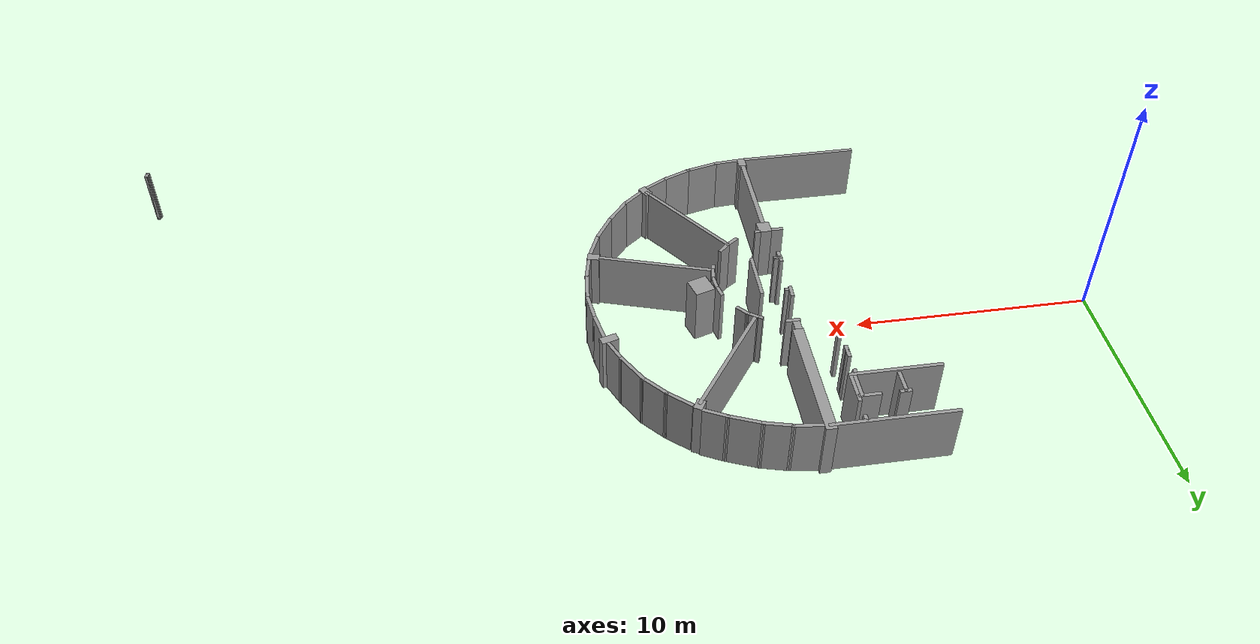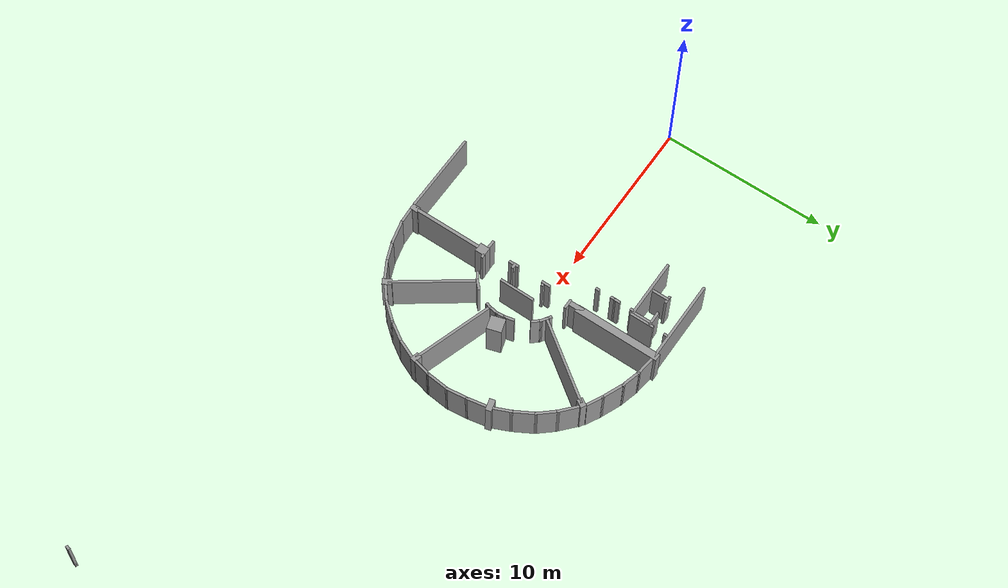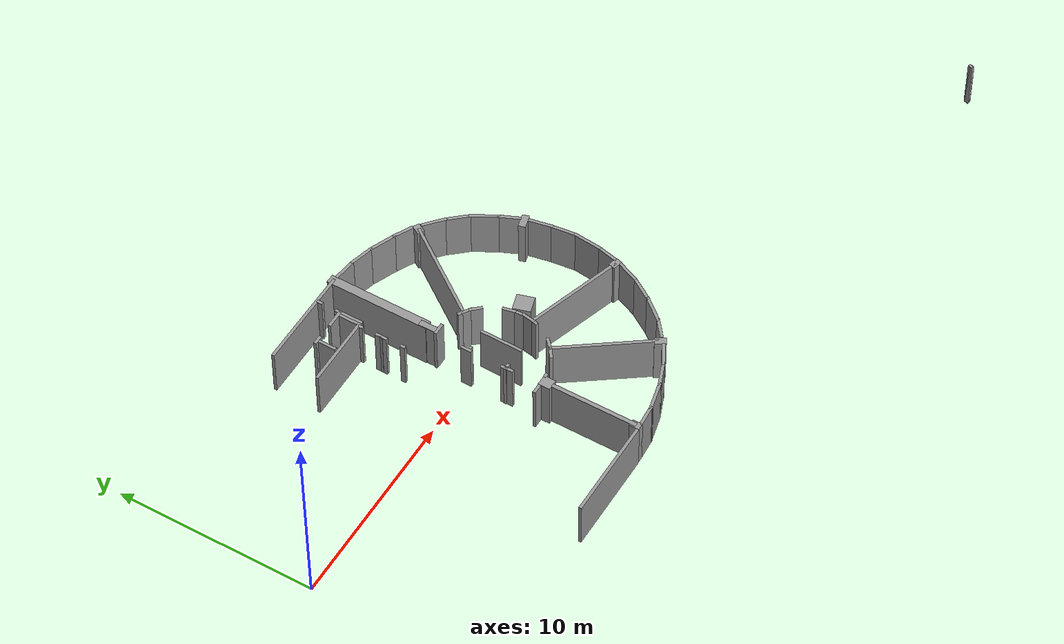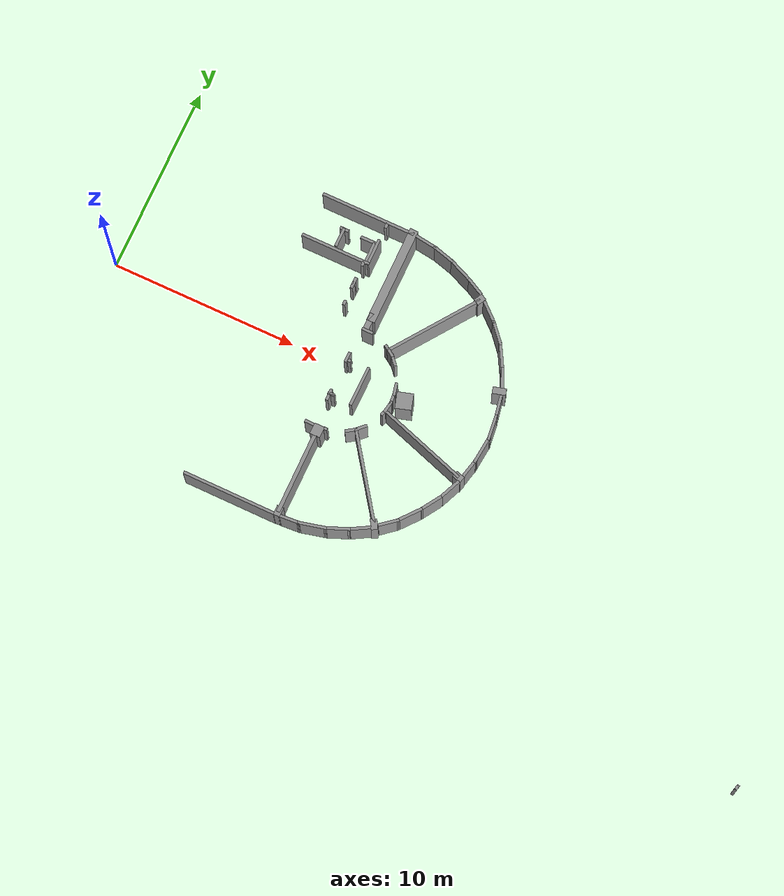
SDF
<sdf version="1.7">
 <model name="New_6_OG_normale_tueren">
  <pose>10.3487 -1.93317 0 0 -0 0</pose>
  <link name="Wall_233">
   <collision name="Wall_233_Collision">
    <geometry><box><size>0.154533 0.15 2.5</size></box></geometry>
    <pose>0 0 1.25 0 -0 0</pose>
   </collision>
   <visual name="Wall_233_Visual">
    <pose>0 0 1.25 0 -0 0</pose>
    <geometry><box><size>0.154533 0.15 2.5</size></box></geometry>
    <material>
     <script><uri>file://media/materials/scripts/gazebo.material</uri><name>Gazebo/Grey</name></script>
     <ambient>1 1 1 1</ambient>
    </material>
    <meta><layer>0</layer></meta>
   </visual>
   <pose>1.38852 5.64703 0 0 -0 -0.061211</pose>
  </link>
  <link name="Wall_235">
   <collision name="Wall_235_Collision">
    <geometry><box><size>0.25 0.15 2.5</size></box></geometry>
    <pose>0 0 1.25 0 -0 0</pose>
   </collision>
   <visual name="Wall_235_Visual">
    <pose>0 0 1.25 0 -0 0</pose>
    <geometry><box><size>0.25 0.15 2.5</size></box></geometry>
    <material>
     <script><uri>file://media/materials/scripts/gazebo.material</uri><name>Gazebo/Grey</name></script>
     <ambient>1 1 1 1</ambient>
    </material>
    <meta><layer>0</layer></meta>
   </visual>
   <pose>1.40579 4.53815 0 0 -0 1.5708</pose>
  </link>
  <link name="Wall_237">
   <collision name="Wall_237_Collision">
    <geometry><box><size>0.605182 0.15 2.5</size></box></geometry>
    <pose>0 0 1.25 0 -0 0</pose>
   </collision>
   <visual name="Wall_237_Visual">
    <pose>0 0 1.25 0 -0 0</pose>
    <geometry><box><size>0.605182 0.15 2.5</size></box></geometry>
    <material>
     <script><uri>file://media/materials/scripts/gazebo.material</uri><name>Gazebo/Grey</name></script>
     <ambient>1 1 1 1</ambient>
    </material>
    <meta><layer>0</layer></meta>
   </visual>
   <pose>1.3893 5.66694 0 0 -0 1.56591</pose>
  </link>
  <link name="Wall_239">
   <collision name="Wall_239_Collision">
    <geometry><box><size>0.25 0.15 2.5</size></box></geometry>
    <pose>0 0 1.25 0 -0 0</pose>
   </collision>
   <visual name="Wall_239_Visual">
    <pose>0 0 1.25 0 -0 0</pose>
    <geometry><box><size>0.25 0.15 2.5</size></box></geometry>
    <material>
     <script><uri>file://media/materials/scripts/gazebo.material</uri><name>Gazebo/Grey</name></script>
     <ambient>1 1 1 1</ambient>
    </material>
    <meta><layer>0</layer></meta>
   </visual>
   <pose>1.39249 6.76095 0 0 -0 1.5708</pose>
  </link>
  <link name="Wall_260">
   <collision name="Wall_260_Collision">
    <geometry><box><size>3.7528 0.15 2.5</size></box></geometry>
    <pose>0 0 1.25 0 -0 0</pose>
   </collision>
   <visual name="Wall_260_Visual">
    <pose>0 0 1.25 0 -0 0</pose>
    <geometry><box><size>3.7528 0.15 2.5</size></box></geometry>
    <material>
     <script><uri>file://media/materials/scripts/gazebo.material</uri><name>Gazebo/Grey</name></script>
     <ambient>1 1 1 1</ambient>
    </material>
    <meta><layer>0</layer></meta>
   </visual>
   <pose>-0.190224 6.87811 0 0 -0 0.003472</pose>
  </link>
  <link name="Wall_261">
   <collision name="Wall_261_Collision">
    <geometry><box><size>1.44469 0.15 2.5</size></box></geometry>
    <pose>0 0 1.25 0 -0 0</pose>
   </collision>
   <visual name="Wall_261_Visual">
    <pose>0 0 1.25 0 -0 0</pose>
    <geometry><box><size>1.44469 0.15 2.5</size></box></geometry>
    <material>
     <script><uri>file://media/materials/scripts/gazebo.material</uri><name>Gazebo/Grey</name></script>
     <ambient>1 1 1 1</ambient>
    </material>
    <meta><layer>0</layer></meta>
   </visual>
   <pose>1.61333 7.53171 0 0 -0 1.57333</pose>
  </link>
  <link name="Wall_266">
   <collision name="Wall_266_Collision">
    <geometry><box><size>1.01494 0.15 2.5</size></box></geometry>
    <pose>0 0 1.25 0 -0 0</pose>
   </collision>
   <visual name="Wall_266_Visual">
    <pose>0 0 1.25 0 -0 0</pose>
    <geometry><box><size>1.01494 0.15 2.5</size></box></geometry>
    <material>
     <script><uri>file://media/materials/scripts/gazebo.material</uri><name>Gazebo/Grey</name></script>
     <ambient>1 1 1 1</ambient>
    </material>
    <meta><layer>0</layer></meta>
   </visual>
   <pose>-0.251791 7.5356 0 0 -0 -1.5708</pose>
  </link>
  <link name="Wall_269">
   <collision name="Wall_269_Collision">
    <geometry><box><size>0.477286 0.15 2.5</size></box></geometry>
    <pose>0 0 1.25 0 -0 0</pose>
   </collision>
   <visual name="Wall_269_Visual">
    <pose>0 0 1.25 0 -0 0</pose>
    <geometry><box><size>0.477286 0.15 2.5</size></box></geometry>
    <material>
     <script><uri>file://media/materials/scripts/gazebo.material</uri><name>Gazebo/Grey</name></script>
     <ambient>1 1 1 1</ambient>
    </material>
    <meta><layer>0</layer></meta>
   </visual>
   <pose>-0.228705 8.00241 0 0 -0 0.010641</pose>
  </link>
  <link name="Wall_273">
   <collision name="Wall_273_Collision">
    <geometry><box><size>0.905542 0.15 2.5</size></box></geometry>
    <pose>0 0 1.25 0 -0 0</pose>
   </collision>
   <visual name="Wall_273_Visual">
    <pose>0 0 1.25 0 -0 0</pose>
    <geometry><box><size>0.905542 0.15 2.5</size></box></geometry>
    <material>
     <script><uri>file://media/materials/scripts/gazebo.material</uri><name>Gazebo/Grey</name></script>
     <ambient>1 1 1 1</ambient>
    </material>
    <meta><layer>0</layer></meta>
   </visual>
   <pose>1.16057 7.9967 0 0 -0 0.010488</pose>
  </link>
  <link name="Wall_275">
   <collision name="Wall_275_Collision">
    <geometry><box><size>1.07522 0.15 2.5</size></box></geometry>
    <pose>0 0 1.25 0 -0 0</pose>
   </collision>
   <visual name="Wall_275_Visual">
    <pose>0 0 1.25 0 -0 0</pose>
    <geometry><box><size>1.07522 0.15 2.5</size></box></geometry>
    <material>
     <script><uri>file://media/materials/scripts/gazebo.material</uri><name>Gazebo/Grey</name></script>
     <ambient>1 1 1 1</ambient>
    </material>
    <meta><layer>0</layer></meta>
   </visual>
   <pose>1.46792 7.49538 0 0 -0 1.5708</pose>
  </link>
  <link name="Wall_277">
   <collision name="Wall_277_Collision">
    <geometry><box><size>5.08838 0.15 2.5</size></box></geometry>
    <pose>0 0 1.25 0 -0 0</pose>
   </collision>
   <visual name="Wall_277_Visual">
    <pose>0 0 1.25 0 -0 0</pose>
    <geometry><box><size>5.08838 0.15 2.5</size></box></geometry>
    <material>
     <script><uri>file://media/materials/scripts/gazebo.material</uri><name>Gazebo/Grey</name></script>
     <ambient>1 1 1 1</ambient>
    </material>
    <meta><layer>0</layer></meta>
   </visual>
   <pose>0.544986 9.24095 0 0 -0 0</pose>
  </link>
  <link name="Wall_279">
   <collision name="Wall_279_Collision">
    <geometry><box><size>0.310909 0.15 2.5</size></box></geometry>
    <pose>0 0 1.25 0 -0 0</pose>
   </collision>
   <visual name="Wall_279_Visual">
    <pose>0 0 1.25 0 -0 0</pose>
    <geometry><box><size>0.310909 0.15 2.5</size></box></geometry>
    <material>
     <script><uri>file://media/materials/scripts/gazebo.material</uri><name>Gazebo/Grey</name></script>
     <ambient>1 1 1 1</ambient>
    </material>
    <meta><layer>0</layer></meta>
   </visual>
   <pose>1.63503 9.0911 0 0 -0 -1.5708</pose>
  </link>
  <link name="Wall_281">
   <collision name="Wall_281_Collision">
    <geometry><box><size>5.24655 0.45 2.5</size></box></geometry>
    <pose>0 0 1.25 0 -0 0</pose>
   </collision>
   <visual name="Wall_281_Visual">
    <pose>0 0 1.25 0 -0 0</pose>
    <geometry><box><size>5.24655 0.45 2.5</size></box></geometry>
    <material>
     <script><uri>file://media/materials/scripts/gazebo.material</uri><name>Gazebo/Grey</name></script>
     <ambient>1 1 1 1</ambient>
    </material>
    <meta><layer>0</layer></meta>
   </visual>
   <pose>3.00901 6.83112 0 0 -0 -1.57295</pose>
  </link>
  <link name="Wall_285">
   <collision name="Wall_285_Collision">
    <geometry><box><size>0.85 0.3 2.5</size></box></geometry>
    <pose>0 0 1.25 0 -0 0</pose>
   </collision>
   <visual name="Wall_285_Visual">
    <pose>0 0 1.25 0 -0 0</pose>
    <geometry><box><size>0.85 0.3 2.5</size></box></geometry>
    <material>
     <script><uri>file://media/materials/scripts/gazebo.material</uri><name>Gazebo/Grey</name></script>
     <ambient>1 1 1 1</ambient>
    </material>
    <meta><layer>0</layer></meta>
   </visual>
   <pose>2.96025 4.18947 0 0 -0 -1.5708</pose>
  </link>
  <link name="Wall_29">
   <collision name="Wall_29_Collision">
    <geometry><box><size>5 0.15 2.5</size></box></geometry>
    <pose>0 0 1.25 0 -0 0</pose>
   </collision>
   <visual name="Wall_29_Visual">
    <pose>0 0 1.25 0 -0 0</pose>
    <geometry><box><size>5 0.15 2.5</size></box></geometry>
    <material>
     <script><uri>file://media/materials/scripts/gazebo.material</uri><name>Gazebo/Grey</name></script>
     <ambient>1 1 1 1</ambient>
    </material>
    <meta><layer>0</layer></meta>
   </visual>
   <pose>0.289373 -6.75961 0 0 -0 0</pose>
  </link>
  <link name="Wall_31">
   <collision name="Wall_31_Collision">
    <geometry><box><size>1.12025 0.15 2.5</size></box></geometry>
    <pose>0 0 1.25 0 -0 0</pose>
   </collision>
   <visual name="Wall_31_Visual">
    <pose>0 0 1.25 0 -0 0</pose>
    <geometry><box><size>1.12025 0.15 2.5</size></box></geometry>
    <material>
     <script><uri>file://media/materials/scripts/gazebo.material</uri><name>Gazebo/Grey</name></script>
     <ambient>1 1 1 1</ambient>
    </material>
    <meta><layer>0</layer></meta>
   </visual>
   <pose>3.61863 -6.7029 0 0 -0 0.070197</pose>
  </link>
  <link name="Wall_311">
   <collision name="Wall_311_Collision">
    <geometry><box><size>2.13937 0.15 2.5</size></box></geometry>
    <pose>0 0 1.25 0 -0 0</pose>
   </collision>
   <visual name="Wall_311_Visual">
    <pose>0 0 1.25 0 -0 0</pose>
    <geometry><box><size>2.13937 0.15 2.5</size></box></geometry>
    <material>
     <script><uri>file://media/materials/scripts/gazebo.material</uri><name>Gazebo/Grey</name></script>
     <ambient>1 1 1 1</ambient>
    </material>
    <meta><layer>0</layer></meta>
   </visual>
   <pose>3.92635 0.932707 0 0 -0 -1.58242</pose>
  </link>
  <link name="Wall_313">
   <collision name="Wall_313_Collision">
    <geometry><box><size>0.612757 0.15 2.5</size></box></geometry>
    <pose>0 0 1.25 0 -0 0</pose>
   </collision>
   <visual name="Wall_313_Visual">
    <pose>0 0 1.25 0 -0 0</pose>
    <geometry><box><size>0.612757 0.15 2.5</size></box></geometry>
    <material>
     <script><uri>file://media/materials/scripts/gazebo.material</uri><name>Gazebo/Grey</name></script>
     <ambient>1 1 1 1</ambient>
    </material>
    <meta><layer>0</layer></meta>
   </visual>
   <pose>2.71437 -0.103416 0 0 -0 -1.5458</pose>
  </link>
  <link name="Wall_32">
   <collision name="Wall_32_Collision">
    <geometry><box><size>1.51083 0.15 2.5</size></box></geometry>
    <pose>0 0 1.25 0 -0 0</pose>
   </collision>
   <visual name="Wall_32_Visual">
    <pose>0 0 1.25 0 -0 0</pose>
    <geometry><box><size>1.51083 0.15 2.5</size></box></geometry>
    <material>
     <script><uri>file://media/materials/scripts/gazebo.material</uri><name>Gazebo/Grey</name></script>
     <ambient>1 1 1 1</ambient>
    </material>
    <meta><layer>0</layer></meta>
   </visual>
   <pose>4.76418 -6.51008 0 0 -0 0.235545</pose>
  </link>
  <link name="Wall_33">
   <collision name="Wall_33_Collision">
    <geometry><box><size>1.32385 0.15 2.5</size></box></geometry>
    <pose>0 0 1.25 0 -0 0</pose>
   </collision>
   <visual name="Wall_33_Visual">
    <pose>0 0 1.25 0 -0 0</pose>
    <geometry><box><size>1.32385 0.15 2.5</size></box></geometry>
    <material>
     <script><uri>file://media/materials/scripts/gazebo.material</uri><name>Gazebo/Grey</name></script>
     <ambient>1 1 1 1</ambient>
    </material>
    <meta><layer>0</layer></meta>
   </visual>
   <pose>5.97023 -6.13201 0 0 -0 0.382899</pose>
  </link>
  <link name="Wall_34">
   <collision name="Wall_34_Collision">
    <geometry><box><size>1.20032 0.15 2.5</size></box></geometry>
    <pose>0 0 1.25 0 -0 0</pose>
   </collision>
   <visual name="Wall_34_Visual">
    <pose>0 0 1.25 0 -0 0</pose>
    <geometry><box><size>1.20032 0.15 2.5</size></box></geometry>
    <material>
     <script><uri>file://media/materials/scripts/gazebo.material</uri><name>Gazebo/Grey</name></script>
     <ambient>1 1 1 1</ambient>
    </material>
    <meta><layer>0</layer></meta>
   </visual>
   <pose>6.97977 -5.65498 0 0 -0 0.513014</pose>
  </link>
  <link name="Wall_353">
   <collision name="Wall_353_Collision">
    <geometry><box><size>0.25 0.15 2.5</size></box></geometry>
    <pose>0 0 1.25 0 -0 0</pose>
   </collision>
   <visual name="Wall_353_Visual">
    <pose>0 0 1.25 0 -0 0</pose>
    <geometry><box><size>0.25 0.15 2.5</size></box></geometry>
    <material>
     <script><uri>file://media/materials/scripts/gazebo.material</uri><name>Gazebo/Grey</name></script>
     <ambient>1 1 1 1</ambient>
    </material>
    <meta><layer>0</layer></meta>
   </visual>
   <pose>29.3637 -9.57449 0 0 -0 -1.8326</pose>
  </link>
  <link name="Wall_354">
   <collision name="Wall_354_Collision">
    <geometry><box><size>0.25 0.15 2.5</size></box></geometry>
    <pose>0 0 1.25 0 -0 0</pose>
   </collision>
   <visual name="Wall_354_Visual">
    <pose>0 0 1.25 0 -0 0</pose>
    <geometry><box><size>0.25 0.15 2.5</size></box></geometry>
    <material>
     <script><uri>file://media/materials/scripts/gazebo.material</uri><name>Gazebo/Grey</name></script>
     <ambient>1 1 1 1</ambient>
    </material>
    <meta><layer>0</layer></meta>
   </visual>
   <pose>29.3637 -9.57449 0 0 -0 1.309</pose>
  </link>
  <link name="Wall_357">
   <collision name="Wall_357_Collision">
    <geometry><box><size>0.6 0.55 2.5</size></box></geometry>
    <pose>0 0 1.25 0 -0 0</pose>
   </collision>
   <visual name="Wall_357_Visual">
    <pose>0 0 1.25 0 -0 0</pose>
    <geometry><box><size>0.6 0.55 2.5</size></box></geometry>
    <material>
     <script><uri>file://media/materials/scripts/gazebo.material</uri><name>Gazebo/Grey</name></script>
     <ambient>1 1 1 1</ambient>
    </material>
    <meta><layer>0</layer></meta>
   </visual>
   <pose>2.95055 -2.01703 0 0 -0 -1.5708</pose>
  </link>
  <link name="Wall_36">
   <collision name="Wall_36_Collision">
    <geometry><box><size>1.09344 0.15 2.5</size></box></geometry>
    <pose>0 0 1.25 0 -0 0</pose>
   </collision>
   <visual name="Wall_36_Visual">
    <pose>0 0 1.25 0 -0 0</pose>
    <geometry><box><size>1.09344 0.15 2.5</size></box></geometry>
    <material>
     <script><uri>file://media/materials/scripts/gazebo.material</uri><name>Gazebo/Grey</name></script>
     <ambient>1 1 1 1</ambient>
    </material>
    <meta><layer>0</layer></meta>
   </visual>
   <pose>8.19016 -4.77617 0 0 -0 0.684617</pose>
  </link>
  <link name="Wall_37">
   <collision name="Wall_37_Collision">
    <geometry><box><size>1.44607 0.15 2.5</size></box></geometry>
    <pose>0 0 1.25 0 -0 0</pose>
   </collision>
   <visual name="Wall_37_Visual">
    <pose>0 0 1.25 0 -0 0</pose>
    <geometry><box><size>1.44607 0.15 2.5</size></box></geometry>
    <material>
     <script><uri>file://media/materials/scripts/gazebo.material</uri><name>Gazebo/Grey</name></script>
     <ambient>1 1 1 1</ambient>
    </material>
    <meta><layer>0</layer></meta>
   </visual>
   <pose>8.96824 -3.9782 0 0 -0 0.880478</pose>
  </link>
  <link name="Wall_377">
   <collision name="Wall_377_Collision">
    <geometry><box><size>0.86044 0.85 2.5</size></box></geometry>
    <pose>0 0 1.25 0 -0 0</pose>
   </collision>
   <visual name="Wall_377_Visual">
    <pose>0 0 1.25 0 -0 0</pose>
    <geometry><box><size>0.86044 0.85 2.5</size></box></geometry>
    <material>
     <script><uri>file://media/materials/scripts/gazebo.material</uri><name>Gazebo/Grey</name></script>
     <ambient>1 1 1 1</ambient>
    </material>
    <meta><layer>0</layer></meta>
   </visual>
   <pose>6.2873 1.18451 0 0 -0 -1.27934</pose>
  </link>
  <link name="Wall_38">
   <collision name="Wall_38_Collision">
    <geometry><box><size>1.29053 0.15 2.5</size></box></geometry>
    <pose>0 0 1.25 0 -0 0</pose>
   </collision>
   <visual name="Wall_38_Visual">
    <pose>0 0 1.25 0 -0 0</pose>
    <geometry><box><size>1.29053 0.15 2.5</size></box></geometry>
    <material>
     <script><uri>file://media/materials/scripts/gazebo.material</uri><name>Gazebo/Grey</name></script>
     <ambient>1 1 1 1</ambient>
    </material>
    <meta><layer>0</layer></meta>
   </visual>
   <pose>9.68915 -2.99876 0 0 -0 0.999721</pose>
  </link>
  <link name="Wall_385">
   <collision name="Wall_385_Collision">
    <geometry><box><size>0.5 0.35 2.5</size></box></geometry>
    <pose>0 0 1.25 0 -0 0</pose>
   </collision>
   <visual name="Wall_385_Visual">
    <pose>0 0 1.25 0 -0 0</pose>
    <geometry><box><size>0.5 0.35 2.5</size></box></geometry>
    <material>
     <script><uri>file://media/materials/scripts/gazebo.material</uri><name>Gazebo/Grey</name></script>
     <ambient>1 1 1 1</ambient>
    </material>
    <meta><layer>0</layer></meta>
   </visual>
   <pose>2.94326 -6.56619 0 0 -0 -1.5708</pose>
  </link>
  <link name="Wall_388">
   <collision name="Wall_388_Collision">
    <geometry><box><size>0.549822 0.35 2.5</size></box></geometry>
    <pose>0 0 1.25 0 -0 0</pose>
   </collision>
   <visual name="Wall_388_Visual">
    <pose>0 0 1.25 0 -0 0</pose>
    <geometry><box><size>0.549822 0.35 2.5</size></box></geometry>
    <material>
     <script><uri>file://media/materials/scripts/gazebo.material</uri><name>Gazebo/Grey</name></script>
     <ambient>1 1 1 1</ambient>
    </material>
    <meta><layer>0</layer></meta>
   </visual>
   <pose>7.56506 -5.16069 0 0 -0 -1.04668</pose>
  </link>
  <link name="Wall_391">
   <collision name="Wall_391_Collision">
    <geometry><box><size>0.5 0.35 2.5</size></box></geometry>
    <pose>0 0 1.25 0 -0 0</pose>
   </collision>
   <visual name="Wall_391_Visual">
    <pose>0 0 1.25 0 -0 0</pose>
    <geometry><box><size>0.5 0.35 2.5</size></box></geometry>
    <material>
     <script><uri>file://media/materials/scripts/gazebo.material</uri><name>Gazebo/Grey</name></script>
     <ambient>1 1 1 1</ambient>
    </material>
    <meta><layer>0</layer></meta>
   </visual>
   <pose>10.3922 -1.19975 0 0 -0 -0.261799</pose>
  </link>
  <link name="Wall_393">
   <collision name="Wall_393_Collision">
    <geometry><box><size>0.69961 0.35 2.5</size></box></geometry>
    <pose>0 0 1.25 0 -0 0</pose>
   </collision>
   <visual name="Wall_393_Visual">
    <pose>0 0 1.25 0 -0 0</pose>
    <geometry><box><size>0.69961 0.35 2.5</size></box></geometry>
    <material>
     <script><uri>file://media/materials/scripts/gazebo.material</uri><name>Gazebo/Grey</name></script>
     <ambient>1 1 1 1</ambient>
    </material>
    <meta><layer>0</layer></meta>
   </visual>
   <pose>10.4153 3.65817 0 0 -0 0.260234</pose>
  </link>
  <link name="Wall_395">
   <collision name="Wall_395_Collision">
    <geometry><box><size>0.5 0.35 2.5</size></box></geometry>
    <pose>0 0 1.25 0 -0 0</pose>
   </collision>
   <visual name="Wall_395_Visual">
    <pose>0 0 1.25 0 -0 0</pose>
    <geometry><box><size>0.5 0.35 2.5</size></box></geometry>
    <material>
     <script><uri>file://media/materials/scripts/gazebo.material</uri><name>Gazebo/Grey</name></script>
     <ambient>1 1 1 1</ambient>
    </material>
    <meta><layer>0</layer></meta>
   </visual>
   <pose>7.55539 7.54986 0 0 -0 1.0472</pose>
  </link>
  <link name="Wall_398">
   <collision name="Wall_398_Collision">
    <geometry><box><size>0.360431 0.15 2.5</size></box></geometry>
    <pose>0 0 1.25 0 -0 0</pose>
   </collision>
   <visual name="Wall_398_Visual">
    <pose>0 0 1.25 0 -0 0</pose>
    <geometry><box><size>0.360431 0.15 2.5</size></box></geometry>
    <material>
     <script><uri>file://media/materials/scripts/gazebo.material</uri><name>Gazebo/Grey</name></script>
     <ambient>1 1 1 1</ambient>
    </material>
    <meta><layer>0</layer></meta>
   </visual>
   <pose>2.80048 -0.029954 0 0 -0 -3.12597</pose>
  </link>
  <link name="Wall_399">
   <collision name="Wall_399_Collision">
    <geometry><box><size>0.360431 0.15 2.5</size></box></geometry>
    <pose>0 0 1.25 0 -0 0</pose>
   </collision>
   <visual name="Wall_399_Visual">
    <pose>0 0 1.25 0 -0 0</pose>
    <geometry><box><size>0.360431 0.15 2.5</size></box></geometry>
    <material>
     <script><uri>file://media/materials/scripts/gazebo.material</uri><name>Gazebo/Grey</name></script>
     <ambient>1 1 1 1</ambient>
    </material>
    <meta><layer>0</layer></meta>
   </visual>
   <pose>2.80376 -0.029954 0 0 -0 0.015624</pose>
  </link>
  <link name="Wall_40">
   <collision name="Wall_40_Collision">
    <geometry><box><size>1.16319 0.15 2.5</size></box></geometry>
    <pose>0 0 1.25 0 -0 0</pose>
   </collision>
   <visual name="Wall_40_Visual">
    <pose>0 0 1.25 0 -0 0</pose>
    <geometry><box><size>1.16319 0.15 2.5</size></box></geometry>
    <material>
     <script><uri>file://media/materials/scripts/gazebo.material</uri><name>Gazebo/Grey</name></script>
     <ambient>1 1 1 1</ambient>
    </material>
    <meta><layer>0</layer></meta>
   </visual>
   <pose>10.2684 -1.92486 0 0 -0 -1.97955</pose>
  </link>
  <link name="Wall_401">
   <collision name="Wall_401_Collision">
    <geometry><box><size>0.15 0.15 2.5</size></box></geometry>
    <pose>0 0 1.25 0 -0 0</pose>
   </collision>
   <visual name="Wall_401_Visual">
    <pose>0 0 1.25 0 -0 0</pose>
    <geometry><box><size>0.15 0.15 2.5</size></box></geometry>
    <material>
     <script><uri>file://media/materials/scripts/gazebo.material</uri><name>Gazebo/Grey</name></script>
     <ambient>1 1 1 1</ambient>
    </material>
    <meta><layer>0</layer></meta>
   </visual>
   <pose>2.89941 1.91747 0 0 -0 0</pose>
  </link>
  <link name="Wall_403">
   <collision name="Wall_403_Collision">
    <geometry><box><size>0.558852 0.15 2.5</size></box></geometry>
    <pose>0 0 1.25 0 -0 0</pose>
   </collision>
   <visual name="Wall_403_Visual">
    <pose>0 0 1.25 0 -0 0</pose>
    <geometry><box><size>0.558852 0.15 2.5</size></box></geometry>
    <material>
     <script><uri>file://media/materials/scripts/gazebo.material</uri><name>Gazebo/Grey</name></script>
     <ambient>1 1 1 1</ambient>
    </material>
    <meta><layer>0</layer></meta>
   </visual>
   <pose>2.74033 2.03986 0 0 -0 1.54924</pose>
  </link>
  <link name="Wall_42">
   <collision name="Wall_42_Collision">
    <geometry><box><size>1.11963 0.15 2.5</size></box></geometry>
    <pose>0 0 1.25 0 -0 0</pose>
   </collision>
   <visual name="Wall_42_Visual">
    <pose>0 0 1.25 0 -0 0</pose>
    <geometry><box><size>1.11963 0.15 2.5</size></box></geometry>
    <material>
     <script><uri>file://media/materials/scripts/gazebo.material</uri><name>Gazebo/Grey</name></script>
     <ambient>1 1 1 1</ambient>
    </material>
    <meta><layer>0</layer></meta>
   </visual>
   <pose>10.6984 -0.589938 0 0 -0 1.34323</pose>
  </link>
  <link name="Wall_43">
   <collision name="Wall_43_Collision">
    <geometry><box><size>1.48869 0.15 2.5</size></box></geometry>
    <pose>0 0 1.25 0 -0 0</pose>
   </collision>
   <visual name="Wall_43_Visual">
    <pose>0 0 1.25 0 -0 0</pose>
    <geometry><box><size>1.48869 0.15 2.5</size></box></geometry>
    <material>
     <script><uri>file://media/materials/scripts/gazebo.material</uri><name>Gazebo/Grey</name></script>
     <ambient>1 1 1 1</ambient>
    </material>
    <meta><layer>0</layer></meta>
   </visual>
   <pose>10.8749 0.548596 0 0 -0 1.47039</pose>
  </link>
  <link name="Wall_44">
   <collision name="Wall_44_Collision">
    <geometry><box><size>1.35283 0.15 2.5</size></box></geometry>
    <pose>0 0 1.25 0 -0 0</pose>
   </collision>
   <visual name="Wall_44_Visual">
    <pose>0 0 1.25 0 -0 0</pose>
    <geometry><box><size>1.35283 0.15 2.5</size></box></geometry>
    <material>
     <script><uri>file://media/materials/scripts/gazebo.material</uri><name>Gazebo/Grey</name></script>
     <ambient>1 1 1 1</ambient>
    </material>
    <meta><layer>0</layer></meta>
   </visual>
   <pose>10.8737 1.81233 0 0 -0 1.68472</pose>
  </link>
  <link name="Wall_45">
   <collision name="Wall_45_Collision">
    <geometry><box><size>1.19924 0.15 2.5</size></box></geometry>
    <pose>0 0 1.25 0 -0 0</pose>
   </collision>
   <visual name="Wall_45_Visual">
    <pose>0 0 1.25 0 -0 0</pose>
    <geometry><box><size>1.19924 0.15 2.5</size></box></geometry>
    <material>
     <script><uri>file://media/materials/scripts/gazebo.material</uri><name>Gazebo/Grey</name></script>
     <ambient>1 1 1 1</ambient>
    </material>
    <meta><layer>0</layer></meta>
   </visual>
   <pose>10.7053 2.92485 0 0 -0 1.76258</pose>
  </link>
  <link name="Wall_47">
   <collision name="Wall_47_Collision">
    <geometry><box><size>1.10002 0.15 2.5</size></box></geometry>
    <pose>0 0 1.25 0 -0 0</pose>
   </collision>
   <visual name="Wall_47_Visual">
    <pose>0 0 1.25 0 -0 0</pose>
    <geometry><box><size>1.10002 0.15 2.5</size></box></geometry>
    <material>
     <script><uri>file://media/materials/scripts/gazebo.material</uri><name>Gazebo/Grey</name></script>
     <ambient>1 1 1 1</ambient>
    </material>
    <meta><layer>0</layer></meta>
   </visual>
   <pose>10.2704 4.3455 0 0 -0 1.9853</pose>
  </link>
  <link name="Wall_48">
   <collision name="Wall_48_Collision">
    <geometry><box><size>1.45831 0.15 2.5</size></box></geometry>
    <pose>0 0 1.25 0 -0 0</pose>
   </collision>
   <visual name="Wall_48_Visual">
    <pose>0 0 1.25 0 -0 0</pose>
    <geometry><box><size>1.45831 0.15 2.5</size></box></geometry>
    <material>
     <script><uri>file://media/materials/scripts/gazebo.material</uri><name>Gazebo/Grey</name></script>
     <ambient>1 1 1 1</ambient>
    </material>
    <meta><layer>0</layer></meta>
   </visual>
   <pose>9.75738 5.34985 0 0 -0 2.085</pose>
  </link>
  <link name="Wall_49">
   <collision name="Wall_49_Collision">
    <geometry><box><size>1.31486 0.15 2.5</size></box></geometry>
    <pose>0 0 1.25 0 -0 0</pose>
   </collision>
   <visual name="Wall_49_Visual">
    <pose>0 0 1.25 0 -0 0</pose>
    <geometry><box><size>1.31486 0.15 2.5</size></box></geometry>
    <material>
     <script><uri>file://media/materials/scripts/gazebo.material</uri><name>Gazebo/Grey</name></script>
     <ambient>1 1 1 1</ambient>
    </material>
    <meta><layer>0</layer></meta>
   </visual>
   <pose>9.05303 6.35854 0 0 -0 2.28752</pose>
  </link>
  <link name="Wall_50">
   <collision name="Wall_50_Collision">
    <geometry><box><size>1.24043 0.15 2.5</size></box></geometry>
    <pose>0 0 1.25 0 -0 0</pose>
   </collision>
   <visual name="Wall_50_Visual">
    <pose>0 0 1.25 0 -0 0</pose>
    <geometry><box><size>1.24043 0.15 2.5</size></box></geometry>
    <material>
     <script><uri>file://media/materials/scripts/gazebo.material</uri><name>Gazebo/Grey</name></script>
     <ambient>1 1 1 1</ambient>
    </material>
    <meta><layer>0</layer></meta>
   </visual>
   <pose>8.26173 7.15854 0 0 -0 2.41826</pose>
  </link>
  <link name="Wall_52">
   <collision name="Wall_52_Collision">
    <geometry><box><size>1.06006 0.15 2.5</size></box></geometry>
    <pose>0 0 1.25 0 -0 0</pose>
   </collision>
   <visual name="Wall_52_Visual">
    <pose>0 0 1.25 0 -0 0</pose>
    <geometry><box><size>1.06006 0.15 2.5</size></box></geometry>
    <material>
     <script><uri>file://media/materials/scripts/gazebo.material</uri><name>Gazebo/Grey</name></script>
     <ambient>1 1 1 1</ambient>
    </material>
    <meta><layer>0</layer></meta>
   </visual>
   <pose>7.03999 8.06724 0 0 -0 2.66513</pose>
  </link>
  <link name="Wall_53">
   <collision name="Wall_53_Collision">
    <geometry><box><size>1.47108 0.15 2.5</size></box></geometry>
    <pose>0 0 1.25 0 -0 0</pose>
   </collision>
   <visual name="Wall_53_Visual">
    <pose>0 0 1.25 0 -0 0</pose>
    <geometry><box><size>1.47108 0.15 2.5</size></box></geometry>
    <material>
     <script><uri>file://media/materials/scripts/gazebo.material</uri><name>Gazebo/Grey</name></script>
     <ambient>1 1 1 1</ambient>
    </material>
    <meta><layer>0</layer></meta>
   </visual>
   <pose>6.02695 8.53246 0 0 -0 2.74275</pose>
  </link>
  <link name="Wall_54">
   <collision name="Wall_54_Collision">
    <geometry><box><size>1.25739 0.15 2.5</size></box></geometry>
    <pose>0 0 1.25 0 -0 0</pose>
   </collision>
   <visual name="Wall_54_Visual">
    <pose>0 0 1.25 0 -0 0</pose>
    <geometry><box><size>1.25739 0.15 2.5</size></box></geometry>
    <material>
     <script><uri>file://media/materials/scripts/gazebo.material</uri><name>Gazebo/Grey</name></script>
     <ambient>1 1 1 1</ambient>
    </material>
    <meta><layer>0</layer></meta>
   </visual>
   <pose>4.88347 8.93246 0 0 -0 2.87947</pose>
  </link>
  <link name="Wall_55">
   <collision name="Wall_55_Collision">
    <geometry><box><size>1.21133 0.15 2.5</size></box></geometry>
    <pose>0 0 1.25 0 -0 0</pose>
   </collision>
   <visual name="Wall_55_Visual">
    <pose>0 0 1.25 0 -0 0</pose>
    <geometry><box><size>1.21133 0.15 2.5</size></box></geometry>
    <material>
     <script><uri>file://media/materials/scripts/gazebo.material</uri><name>Gazebo/Grey</name></script>
     <ambient>1 1 1 1</ambient>
    </material>
    <meta><layer>0</layer></meta>
   </visual>
   <pose>3.8226 9.1455 0 0 -0 3.01012</pose>
  </link>
  <link name="Wall_57">
   <collision name="Wall_57_Collision">
    <geometry><box><size>5.22917 0.15 2.5</size></box></geometry>
    <pose>0 0 1.25 0 -0 0</pose>
   </collision>
   <visual name="Wall_57_Visual">
    <pose>0 0 1.25 0 -0 0</pose>
    <geometry><box><size>5.22917 0.15 2.5</size></box></geometry>
    <material>
     <script><uri>file://media/materials/scripts/gazebo.material</uri><name>Gazebo/Grey</name></script>
     <ambient>1 1 1 1</ambient>
    </material>
    <meta><layer>0</layer></meta>
   </visual>
   <pose>6.03976 5.42705 0 0 -0 -2.1969</pose>
  </link>
  <link name="Wall_59">
   <collision name="Wall_59_Collision">
    <geometry><box><size>4.93599 0.15 2.5</size></box></geometry>
    <pose>0 0 1.25 0 -0 0</pose>
   </collision>
   <visual name="Wall_59_Visual">
    <pose>0 0 1.25 0 -0 0</pose>
    <geometry><box><size>4.93599 0.15 2.5</size></box></geometry>
    <material>
     <script><uri>file://media/materials/scripts/gazebo.material</uri><name>Gazebo/Grey</name></script>
     <ambient>1 1 1 1</ambient>
    </material>
    <meta><layer>0</layer></meta>
   </visual>
   <pose>8.05177 -0.447512 0 0 -0 2.83035</pose>
  </link>
  <link name="Wall_61">
   <collision name="Wall_61_Collision">
    <geometry><box><size>4.85102 0.15 2.5</size></box></geometry>
    <pose>0 0 1.25 0 -0 0</pose>
   </collision>
   <visual name="Wall_61_Visual">
    <pose>0 0 1.25 0 -0 0</pose>
    <geometry><box><size>4.85102 0.15 2.5</size></box></geometry>
    <material>
     <script><uri>file://media/materials/scripts/gazebo.material</uri><name>Gazebo/Grey</name></script>
     <ambient>1 1 1 1</ambient>
    </material>
    <meta><layer>0</layer></meta>
   </visual>
   <pose>6.14185 -3.15646 0 0 -0 -0.946885</pose>
  </link>
  <link name="Wall_63">
   <collision name="Wall_63_Collision">
    <geometry><box><size>4.30142 0.2 2.5</size></box></geometry>
    <pose>0 0 1.25 0 -0 0</pose>
   </collision>
   <visual name="Wall_63_Visual">
    <pose>0 0 1.25 0 -0 0</pose>
    <geometry><box><size>4.30142 0.2 2.5</size></box></geometry>
    <material>
     <script><uri>file://media/materials/scripts/gazebo.material</uri><name>Gazebo/Grey</name></script>
     <ambient>1 1 1 1</ambient>
    </material>
    <meta><layer>0</layer></meta>
   </visual>
   <pose>2.94326 -4.45054 0 0 -0 -1.5708</pose>
  </link>
  <link name="Wall_73">
   <collision name="Wall_73_Collision">
    <geometry><box><size>0.503984 0.15 2.5</size></box></geometry>
    <pose>0 0 1.25 0 -0 0</pose>
   </collision>
   <visual name="Wall_73_Visual">
    <pose>0 0 1.25 0 -0 0</pose>
    <geometry><box><size>0.503984 0.15 2.5</size></box></geometry>
    <material>
     <script><uri>file://media/materials/scripts/gazebo.material</uri><name>Gazebo/Grey</name></script>
     <ambient>1 1 1 1</ambient>
    </material>
    <meta><layer>0</layer></meta>
   </visual>
   <pose>2.42839 -1.81604 0 0 -0 -0.014564</pose>
  </link>
  <link name="Wall_75">
   <collision name="Wall_75_Collision">
    <geometry><box><size>0.25 0.15 2.5</size></box></geometry>
    <pose>0 0 1.25 0 -0 0</pose>
   </collision>
   <visual name="Wall_75_Visual">
    <pose>0 0 1.25 0 -0 0</pose>
    <geometry><box><size>0.25 0.15 2.5</size></box></geometry>
    <material>
     <script><uri>file://media/materials/scripts/gazebo.material</uri><name>Gazebo/Grey</name></script>
     <ambient>1 1 1 1</ambient>
    </material>
    <meta><layer>0</layer></meta>
   </visual>
   <pose>3.2734 -1.76931 0 0 -0 0</pose>
  </link>
  <link name="Wall_77">
   <collision name="Wall_77_Collision">
    <geometry><box><size>0.637651 0.15 2.5</size></box></geometry>
    <pose>0 0 1.25 0 -0 0</pose>
   </collision>
   <visual name="Wall_77_Visual">
    <pose>0 0 1.25 0 -0 0</pose>
    <geometry><box><size>0.637651 0.15 2.5</size></box></geometry>
    <material>
     <script><uri>file://media/materials/scripts/gazebo.material</uri><name>Gazebo/Grey</name></script>
     <ambient>1 1 1 1</ambient>
    </material>
    <meta><layer>0</layer></meta>
   </visual>
   <pose>4.48806 -1.29825 0 0 -0 0.597373</pose>
  </link>
  <link name="Wall_78">
   <collision name="Wall_78_Collision">
    <geometry><box><size>0.670672 0.15 2.5</size></box></geometry>
    <pose>0 0 1.25 0 -0 0</pose>
   </collision>
   <visual name="Wall_78_Visual">
    <pose>0 0 1.25 0 -0 0</pose>
    <geometry><box><size>0.670672 0.15 2.5</size></box></geometry>
    <material>
     <script><uri>file://media/materials/scripts/gazebo.material</uri><name>Gazebo/Grey</name></script>
     <ambient>1 1 1 1</ambient>
    </material>
    <meta><layer>0</layer></meta>
   </visual>
   <pose>4.87764 -0.977711 0 0 -0 0.764012</pose>
  </link>
  <link name="Wall_80">
   <collision name="Wall_80_Collision">
    <geometry><box><size>0.362036 0.15 2.5</size></box></geometry>
    <pose>0 0 1.25 0 -0 0</pose>
   </collision>
   <visual name="Wall_80_Visual">
    <pose>0 0 1.25 0 -0 0</pose>
    <geometry><box><size>0.362036 0.15 2.5</size></box></geometry>
    <material>
     <script><uri>file://media/materials/scripts/gazebo.material</uri><name>Gazebo/Grey</name></script>
     <ambient>1 1 1 1</ambient>
    </material>
    <meta><layer>0</layer></meta>
   </visual>
   <pose>5.59762 0.214037 0 0 -0 1.26133</pose>
  </link>
  <link name="Wall_81">
   <collision name="Wall_81_Collision">
    <geometry><box><size>0.666161 0.15 2.5</size></box></geometry>
    <pose>0 0 1.25 0 -0 0</pose>
   </collision>
   <visual name="Wall_81_Visual">
    <pose>0 0 1.25 0 -0 0</pose>
    <geometry><box><size>0.666161 0.15 2.5</size></box></geometry>
    <material>
     <script><uri>file://media/materials/scripts/gazebo.material</uri><name>Gazebo/Grey</name></script>
     <ambient>1 1 1 1</ambient>
    </material>
    <meta><layer>0</layer></meta>
   </visual>
   <pose>5.67429 0.569806 0 0 -0 1.41088</pose>
  </link>
  <link name="Wall_82">
   <collision name="Wall_82_Collision">
    <geometry><box><size>0.618501 0.15 2.5</size></box></geometry>
    <pose>0 0 1.25 0 -0 0</pose>
   </collision>
   <visual name="Wall_82_Visual">
    <pose>0 0 1.25 0 -0 0</pose>
    <geometry><box><size>0.618501 0.15 2.5</size></box></geometry>
    <material>
     <script><uri>file://media/materials/scripts/gazebo.material</uri><name>Gazebo/Grey</name></script>
     <ambient>1 1 1 1</ambient>
    </material>
    <meta><layer>0</layer></meta>
   </visual>
   <pose>5.69566 1.05801 0 0 -0 1.6551</pose>
  </link>
  <link name="Wall_83">
   <collision name="Wall_83_Collision">
    <geometry><box><size>0.669937 0.15 2.5</size></box></geometry>
    <pose>0 0 1.25 0 -0 0</pose>
   </collision>
   <visual name="Wall_83_Visual">
    <pose>0 0 1.25 0 -0 0</pose>
    <geometry><box><size>0.669937 0.15 2.5</size></box></geometry>
    <material>
     <script><uri>file://media/materials/scripts/gazebo.material</uri><name>Gazebo/Grey</name></script>
     <ambient>1 1 1 1</ambient>
    </material>
    <meta><layer>0</layer></meta>
   </visual>
   <pose>5.61676 1.54457 0 0 -0 1.80044</pose>
  </link>
  <link name="Wall_85">
   <collision name="Wall_85_Collision">
    <geometry><box><size>0.332265 0.15 2.5</size></box></geometry>
    <pose>0 0 1.25 0 -0 0</pose>
   </collision>
   <visual name="Wall_85_Visual">
    <pose>0 0 1.25 0 -0 0</pose>
    <geometry><box><size>0.332265 0.15 2.5</size></box></geometry>
    <material>
     <script><uri>file://media/materials/scripts/gazebo.material</uri><name>Gazebo/Grey</name></script>
     <ambient>1 1 1 1</ambient>
    </material>
    <meta><layer>0</layer></meta>
   </visual>
   <pose>4.34767 3.3207 0 0 -0 -0.522278</pose>
  </link>
  <link name="Wall_86">
   <collision name="Wall_86_Collision">
    <geometry><box><size>0.540004 0.15 2.5</size></box></geometry>
    <pose>0 0 1.25 0 -0 0</pose>
   </collision>
   <visual name="Wall_86_Visual">
    <pose>0 0 1.25 0 -0 0</pose>
    <geometry><box><size>0.540004 0.15 2.5</size></box></geometry>
    <material>
     <script><uri>file://media/materials/scripts/gazebo.material</uri><name>Gazebo/Grey</name></script>
     <ambient>1 1 1 1</ambient>
    </material>
    <meta><layer>0</layer></meta>
   </visual>
   <pose>4.58774 3.16346 0 0 -0 -0.59864</pose>
  </link>
  <link name="Wall_87">
   <collision name="Wall_87_Collision">
    <geometry><box><size>0.634336 0.15 2.5</size></box></geometry>
    <pose>0 0 1.25 0 -0 0</pose>
   </collision>
   <visual name="Wall_87_Visual">
    <pose>0 0 1.25 0 -0 0</pose>
    <geometry><box><size>0.634336 0.15 2.5</size></box></geometry>
    <material>
     <script><uri>file://media/materials/scripts/gazebo.material</uri><name>Gazebo/Grey</name></script>
     <ambient>1 1 1 1</ambient>
    </material>
    <meta><layer>0</layer></meta>
   </visual>
   <pose>4.90993 2.87276 0 0 -0 -0.843027</pose>
  </link>
  <link name="Wall_89">
   <collision name="Wall_89_Collision">
    <geometry><box><size>0.614456 0.15 2.5</size></box></geometry>
    <pose>0 0 1.25 0 -0 0</pose>
   </collision>
   <visual name="Wall_89_Visual">
    <pose>0 0 1.25 0 -0 0</pose>
    <geometry><box><size>0.614456 0.15 2.5</size></box></geometry>
    <material>
     <script><uri>file://media/materials/scripts/gazebo.material</uri><name>Gazebo/Grey</name></script>
     <ambient>1 1 1 1</ambient>
    </material>
    <meta><layer>0</layer></meta>
   </visual>
   <pose>3.07427 3.69557 0 0 -0 3.13952</pose>
  </link>
  <static>1</static>
 </model>
</sdf>
